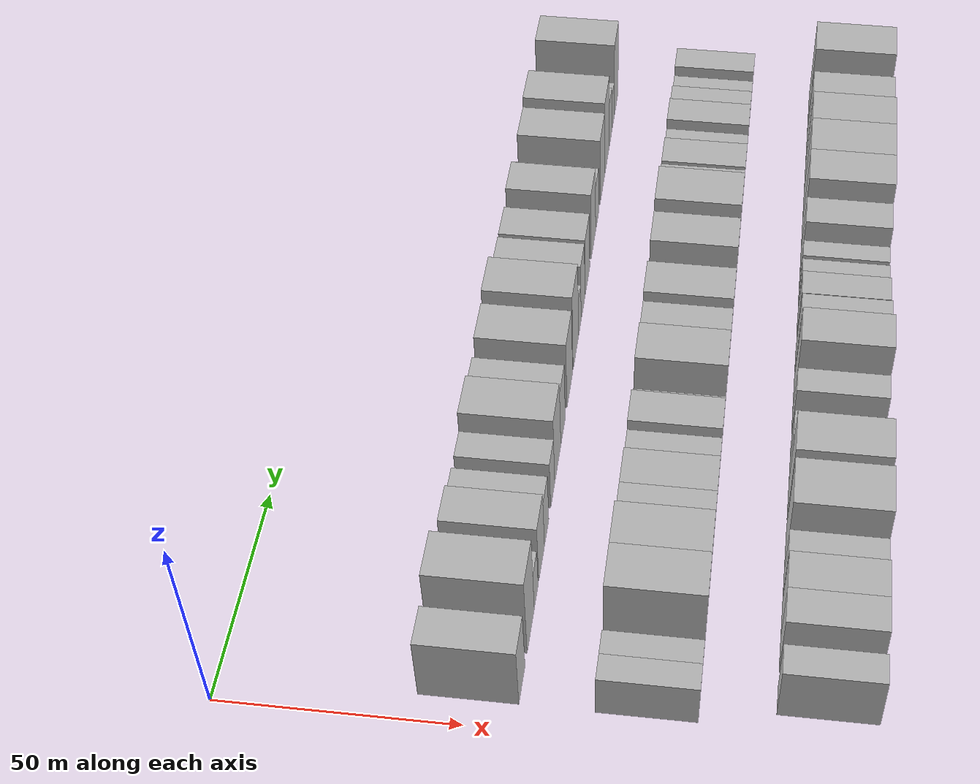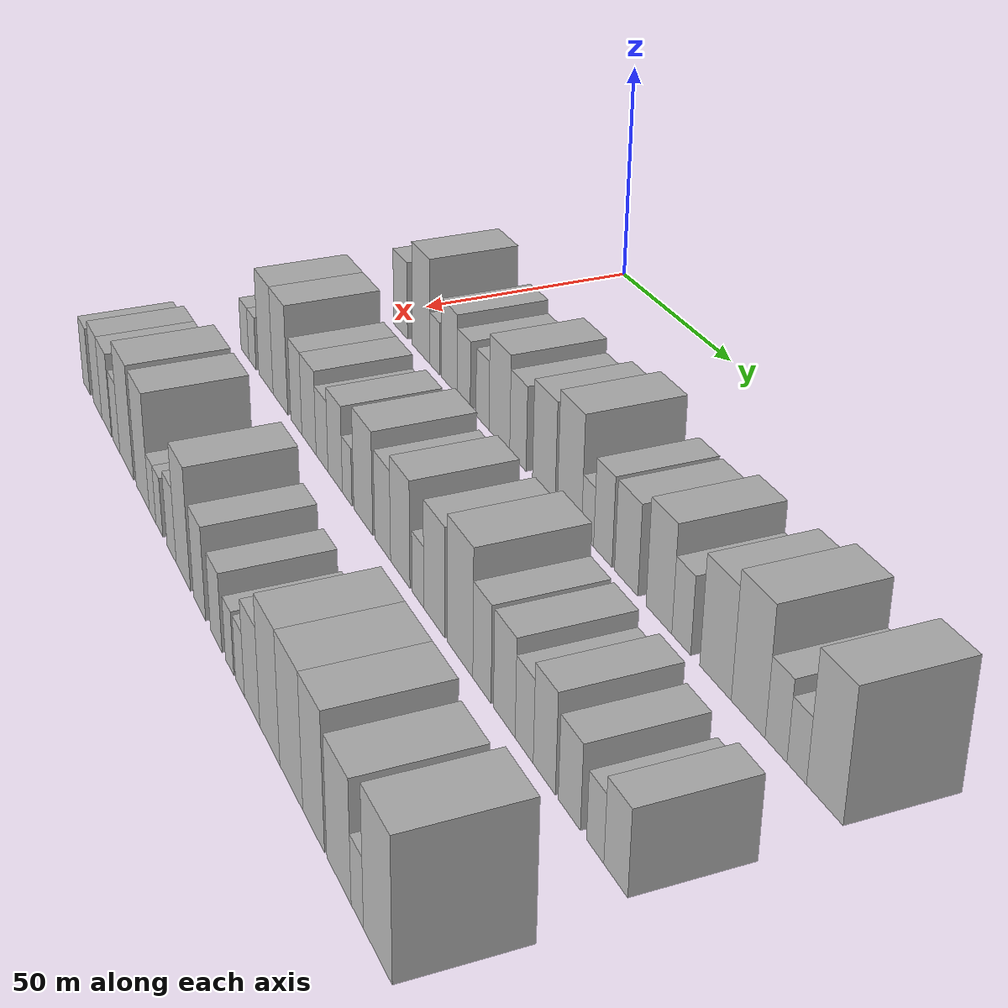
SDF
<sdf version="1.6">
 <world name="default">
  <model name="building_38">
   <static>1</static>
   <pose>50.0000 10.1009 0 0.000000 0.000000 0.000000</pose>
   <link name="link">
    <pose>0 0 9.00 0 0 0</pose>
    <collision name="collision"><geometry><box><size>20.0000 8.5998 18.0000</size></box></geometry></collision>
    <visual name="visual">
     <cast_shadows>0</cast_shadows>
     <geometry><box><size>20.0000 8.5998 18.0000</size></box></geometry>
     <material>
      <script>
       <uri>model://HANNAS_wall/materials/scripts</uri>
       <uri>model://HANNAS_wall/materials/textures</uri>
       <name>vrc/HANNAS_wall</name>
      </script>
     </material>
    </visual>
   </link>
  </model>
  <model name="building_39">
   <static>1</static>
   <pose>50.0000 22.5908 0 0.000000 0.000000 0.000000</pose>
   <link name="link">
    <pose>0 0 12.00 0 0 0</pose>
    <collision name="collision"><geometry><box><size>20.0000 10.3801 24.0000</size></box></geometry></collision>
    <visual name="visual">
     <cast_shadows>0</cast_shadows>
     <geometry><box><size>20.0000 10.3801 24.0000</size></box></geometry>
     <material>
      <script>
       <uri>model://HANNAS_wall/materials/scripts</uri>
       <uri>model://HANNAS_wall/materials/textures</uri>
       <name>vrc/HANNAS_wall</name>
      </script>
     </material>
    </visual>
   </link>
  </model>
  <model name="building_40">
   <static>1</static>
   <pose>50.0000 30.6912 0 0.000000 0.000000 0.000000</pose>
   <link name="link">
    <pose>0 0 6.00 0 0 0</pose>
    <collision name="collision"><geometry><box><size>20.0000 5.8206 12.0000</size></box></geometry></collision>
    <visual name="visual">
     <cast_shadows>0</cast_shadows>
     <geometry><box><size>20.0000 5.8206 12.0000</size></box></geometry>
     <material>
      <script>
       <uri>model://HANNAS_wall/materials/scripts</uri>
       <uri>model://HANNAS_wall/materials/textures</uri>
       <name>vrc/HANNAS_wall</name>
      </script>
     </material>
    </visual>
   </link>
  </model>
  <model name="building_41">
   <static>1</static>
   <pose>50.0000 39.0023 0 0.000000 0.000000 0.000000</pose>
   <link name="link">
    <pose>0 0 9.00 0 0 0</pose>
    <collision name="collision"><geometry><box><size>20.0000 8.8015 18.0000</size></box></geometry></collision>
    <visual name="visual">
     <cast_shadows>0</cast_shadows>
     <geometry><box><size>20.0000 8.8015 18.0000</size></box></geometry>
     <material>
      <script>
       <uri>model://HANNAS_wall/materials/scripts</uri>
       <uri>model://HANNAS_wall/materials/textures</uri>
       <name>vrc/HANNAS_wall</name>
      </script>
     </material>
    </visual>
   </link>
  </model>
  <model name="building_42">
   <static>1</static>
   <pose>50.0000 46.8425 0 0.000000 0.000000 0.000000</pose>
   <link name="link">
    <pose>0 0 7.50 0 0 0</pose>
    <collision name="collision"><geometry><box><size>20.0000 6.8788 15.0000</size></box></geometry></collision>
    <visual name="visual">
     <cast_shadows>0</cast_shadows>
     <geometry><box><size>20.0000 6.8788 15.0000</size></box></geometry>
     <material>
      <script>
       <uri>model://HANNAS_wall/materials/scripts</uri>
       <uri>model://HANNAS_wall/materials/textures</uri>
       <name>vrc/HANNAS_wall</name>
      </script>
     </material>
    </visual>
   </link>
  </model>
  <model name="building_43">
   <static>1</static>
   <pose>50.0000 56.6314 0 0.000000 0.000000 0.000000</pose>
   <link name="link">
    <pose>0 0 7.50 0 0 0</pose>
    <collision name="collision"><geometry><box><size>20.0000 6.6989 15.0000</size></box></geometry></collision>
    <visual name="visual">
     <cast_shadows>0</cast_shadows>
     <geometry><box><size>20.0000 6.6989 15.0000</size></box></geometry>
     <material>
      <script>
       <uri>model://HANNAS_wall/materials/scripts</uri>
       <uri>model://HANNAS_wall/materials/textures</uri>
       <name>vrc/HANNAS_wall</name>
      </script>
     </material>
    </visual>
   </link>
  </model>
  <model name="building_44">
   <static>1</static>
   <pose>50.0000 65.1340 0 0.000000 0.000000 0.000000</pose>
   <link name="link">
    <pose>0 0 10.50 0 0 0</pose>
    <collision name="collision"><geometry><box><size>20.0000 10.3063 21.0000</size></box></geometry></collision>
    <visual name="visual">
     <cast_shadows>0</cast_shadows>
     <geometry><box><size>20.0000 10.3063 21.0000</size></box></geometry>
     <material>
      <script>
       <uri>model://HANNAS_wall/materials/scripts</uri>
       <uri>model://HANNAS_wall/materials/textures</uri>
       <name>vrc/HANNAS_wall</name>
      </script>
     </material>
    </visual>
   </link>
  </model>
  <model name="building_45">
   <static>1</static>
   <pose>50.0000 74.1907 0 0.000000 0.000000 0.000000</pose>
   <link name="link">
    <pose>0 0 9.00 0 0 0</pose>
    <collision name="collision"><geometry><box><size>20.0000 7.8071 18.0000</size></box></geometry></collision>
    <visual name="visual">
     <cast_shadows>0</cast_shadows>
     <geometry><box><size>20.0000 7.8071 18.0000</size></box></geometry>
     <material>
      <script>
       <uri>model://HANNAS_wall/materials/scripts</uri>
       <uri>model://HANNAS_wall/materials/textures</uri>
       <name>vrc/HANNAS_wall</name>
      </script>
     </material>
    </visual>
   </link>
  </model>
  <model name="building_46">
   <static>1</static>
   <pose>50.0000 86.1909 0 0.000000 0.000000 0.000000</pose>
   <link name="link">
    <pose>0 0 10.50 0 0 0</pose>
    <collision name="collision"><geometry><box><size>20.0000 10.1934 21.0000</size></box></geometry></collision>
    <visual name="visual">
     <cast_shadows>0</cast_shadows>
     <geometry><box><size>20.0000 10.1934 21.0000</size></box></geometry>
     <material>
      <script>
       <uri>model://HANNAS_wall/materials/scripts</uri>
       <uri>model://HANNAS_wall/materials/textures</uri>
       <name>vrc/HANNAS_wall</name>
      </script>
     </material>
    </visual>
   </link>
  </model>
  <model name="building_47">
   <static>1</static>
   <pose>50.0000 97.4486 0 0.000000 0.000000 0.000000</pose>
   <link name="link">
    <pose>0 0 12.00 0 0 0</pose>
    <collision name="collision"><geometry><box><size>20.0000 10.3219 24.0000</size></box></geometry></collision>
    <visual name="visual">
     <cast_shadows>0</cast_shadows>
     <geometry><box><size>20.0000 10.3219 24.0000</size></box></geometry>
     <material>
      <script>
       <uri>model://HANNAS_wall/materials/scripts</uri>
       <uri>model://HANNAS_wall/materials/textures</uri>
       <name>vrc/HANNAS_wall</name>
      </script>
     </material>
    </visual>
   </link>
  </model>
  <model name="building_48">
   <static>1</static>
   <pose>50.0000 105.1076 0 0.000000 0.000000 0.000000</pose>
   <link name="link">
    <pose>0 0 6.00 0 0 0</pose>
    <collision name="collision"><geometry><box><size>20.0000 4.9961 12.0000</size></box></geometry></collision>
    <visual name="visual">
     <cast_shadows>0</cast_shadows>
     <geometry><box><size>20.0000 4.9961 12.0000</size></box></geometry>
     <material>
      <script>
       <uri>model://HANNAS_wall/materials/scripts</uri>
       <uri>model://HANNAS_wall/materials/textures</uri>
       <name>vrc/HANNAS_wall</name>
      </script>
     </material>
    </visual>
   </link>
  </model>
  <model name="building_49">
   <static>1</static>
   <pose>50.0000 111.2825 0 0.000000 0.000000 0.000000</pose>
   <link name="link">
    <pose>0 0 9.00 0 0 0</pose>
    <collision name="collision"><geometry><box><size>20.0000 7.3538 18.0000</size></box></geometry></collision>
    <visual name="visual">
     <cast_shadows>0</cast_shadows>
     <geometry><box><size>20.0000 7.3538 18.0000</size></box></geometry>
     <material>
      <script>
       <uri>model://HANNAS_wall/materials/scripts</uri>
       <uri>model://HANNAS_wall/materials/textures</uri>
       <name>vrc/HANNAS_wall</name>
      </script>
     </material>
    </visual>
   </link>
  </model>
  <model name="building_50">
   <static>1</static>
   <pose>50.0000 120.4251 0 0.000000 0.000000 0.000000</pose>
   <link name="link">
    <pose>0 0 9.00 0 0 0</pose>
    <collision name="collision"><geometry><box><size>20.0000 8.9313 18.0000</size></box></geometry></collision>
    <visual name="visual">
     <cast_shadows>0</cast_shadows>
     <geometry><box><size>20.0000 8.9313 18.0000</size></box></geometry>
     <material>
      <script>
       <uri>model://HANNAS_wall/materials/scripts</uri>
       <uri>model://HANNAS_wall/materials/textures</uri>
       <name>vrc/HANNAS_wall</name>
      </script>
     </material>
    </visual>
   </link>
  </model>
  <model name="building_51">
   <static>1</static>
   <pose>50.0000 132.5231 0 0.000000 0.000000 0.000000</pose>
   <link name="link">
    <pose>0 0 10.50 0 0 0</pose>
    <collision name="collision"><geometry><box><size>20.0000 9.2649 21.0000</size></box></geometry></collision>
    <visual name="visual">
     <cast_shadows>0</cast_shadows>
     <geometry><box><size>20.0000 9.2649 21.0000</size></box></geometry>
     <material>
      <script>
       <uri>model://HANNAS_wall/materials/scripts</uri>
       <uri>model://HANNAS_wall/materials/textures</uri>
       <name>vrc/HANNAS_wall</name>
      </script>
     </material>
    </visual>
   </link>
  </model>
  <model name="building_52">
   <static>1</static>
   <pose>50.0000 140.4135 0 0.000000 0.000000 0.000000</pose>
   <link name="link">
    <pose>0 0 7.50 0 0 0</pose>
    <collision name="collision"><geometry><box><size>20.0000 6.5158 15.0000</size></box></geometry></collision>
    <visual name="visual">
     <cast_shadows>0</cast_shadows>
     <geometry><box><size>20.0000 6.5158 15.0000</size></box></geometry>
     <material>
      <script>
       <uri>model://HANNAS_wall/materials/scripts</uri>
       <uri>model://HANNAS_wall/materials/textures</uri>
       <name>vrc/HANNAS_wall</name>
      </script>
     </material>
    </visual>
   </link>
  </model>
  <model name="building_53">
   <static>1</static>
   <pose>50.0000 151.7754 0 0.000000 0.000000 0.000000</pose>
   <link name="link">
    <pose>0 0 10.50 0 0 0</pose>
    <collision name="collision"><geometry><box><size>20.0000 10.2081 21.0000</size></box></geometry></collision>
    <visual name="visual">
     <cast_shadows>0</cast_shadows>
     <geometry><box><size>20.0000 10.2081 21.0000</size></box></geometry>
     <material>
      <script>
       <uri>model://HANNAS_wall/materials/scripts</uri>
       <uri>model://HANNAS_wall/materials/textures</uri>
       <name>vrc/HANNAS_wall</name>
      </script>
     </material>
    </visual>
   </link>
  </model>
  <model name="building_54">
   <static>1</static>
   <pose>50.0000 162.0459 0 0.000000 0.000000 0.000000</pose>
   <link name="link">
    <pose>0 0 12.00 0 0 0</pose>
    <collision name="collision"><geometry><box><size>20.0000 10.3329 24.0000</size></box></geometry></collision>
    <visual name="visual">
     <cast_shadows>0</cast_shadows>
     <geometry><box><size>20.0000 10.3329 24.0000</size></box></geometry>
     <material>
      <script>
       <uri>model://HANNAS_wall/materials/scripts</uri>
       <uri>model://HANNAS_wall/materials/textures</uri>
       <name>vrc/HANNAS_wall</name>
      </script>
     </material>
    </visual>
   </link>
  </model>
  <model name="building_55">
   <static>1</static>
   <pose>50.0000 170.3874 0 0.000000 0.000000 0.000000</pose>
   <link name="link">
    <pose>0 0 7.50 0 0 0</pose>
    <collision name="collision"><geometry><box><size>20.0000 6.3500 15.0000</size></box></geometry></collision>
    <visual name="visual">
     <cast_shadows>0</cast_shadows>
     <geometry><box><size>20.0000 6.3500 15.0000</size></box></geometry>
     <material>
      <script>
       <uri>model://HANNAS_wall/materials/scripts</uri>
       <uri>model://HANNAS_wall/materials/textures</uri>
       <name>vrc/HANNAS_wall</name>
      </script>
     </material>
    </visual>
   </link>
  </model>
  <model name="building_56">
   <static>1</static>
   <pose>50.0000 176.3052 0 0.000000 0.000000 0.000000</pose>
   <link name="link">
    <pose>0 0 6.00 0 0 0</pose>
    <collision name="collision"><geometry><box><size>20.0000 5.4856 12.0000</size></box></geometry></collision>
    <visual name="visual">
     <cast_shadows>0</cast_shadows>
     <geometry><box><size>20.0000 5.4856 12.0000</size></box></geometry>
     <material>
      <script>
       <uri>model://HANNAS_wall/materials/scripts</uri>
       <uri>model://HANNAS_wall/materials/textures</uri>
       <name>vrc/HANNAS_wall</name>
      </script>
     </material>
    </visual>
   </link>
  </model>
  <model name="building_57">
   <static>1</static>
   <pose>50.0000 183.9817 0 0.000000 0.000000 0.000000</pose>
   <link name="link">
    <pose>0 0 12.00 0 0 0</pose>
    <collision name="collision"><geometry><box><size>20.0000 9.8675 24.0000</size></box></geometry></collision>
    <visual name="visual">
     <cast_shadows>0</cast_shadows>
     <geometry><box><size>20.0000 9.8675 24.0000</size></box></geometry>
     <material>
      <script>
       <uri>model://HANNAS_wall/materials/scripts</uri>
       <uri>model://HANNAS_wall/materials/textures</uri>
       <name>vrc/HANNAS_wall</name>
      </script>
     </material>
    </visual>
   </link>
  </model>
  <model name="building_124">
   <static>1</static>
   <pose>85.0000 8.6486 0 0.000000 0.000000 0.000000</pose>
   <link name="link">
    <pose>0 0 6.00 0 0 0</pose>
    <collision name="collision"><geometry><box><size>20.0000 5.8241 12.0000</size></box></geometry></collision>
    <visual name="visual">
     <cast_shadows>0</cast_shadows>
     <geometry><box><size>20.0000 5.8241 12.0000</size></box></geometry>
     <material>
      <script>
       <uri>model://HANNAS_wall/materials/scripts</uri>
       <uri>model://HANNAS_wall/materials/textures</uri>
       <name>vrc/HANNAS_wall</name>
      </script>
     </material>
    </visual>
   </link>
  </model>
  <model name="building_125">
   <static>1</static>
   <pose>85.0000 14.2326 0 0.000000 0.000000 0.000000</pose>
   <link name="link">
    <pose>0 0 6.00 0 0 0</pose>
    <collision name="collision"><geometry><box><size>20.0000 5.3440 12.0000</size></box></geometry></collision>
    <visual name="visual">
     <cast_shadows>0</cast_shadows>
     <geometry><box><size>20.0000 5.3440 12.0000</size></box></geometry>
     <material>
      <script>
       <uri>model://HANNAS_wall/materials/scripts</uri>
       <uri>model://HANNAS_wall/materials/textures</uri>
       <name>vrc/HANNAS_wall</name>
      </script>
     </material>
    </visual>
   </link>
  </model>
  <model name="building_126">
   <static>1</static>
   <pose>85.0000 24.0007 0 0.000000 0.000000 0.000000</pose>
   <link name="link">
    <pose>0 0 12.00 0 0 0</pose>
    <collision name="collision"><geometry><box><size>20.0000 10.1921 24.0000</size></box></geometry></collision>
    <visual name="visual">
     <cast_shadows>0</cast_shadows>
     <geometry><box><size>20.0000 10.1921 24.0000</size></box></geometry>
     <material>
      <script>
       <uri>model://HANNAS_wall/materials/scripts</uri>
       <uri>model://HANNAS_wall/materials/textures</uri>
       <name>vrc/HANNAS_wall</name>
      </script>
     </material>
    </visual>
   </link>
  </model>
  <model name="building_127">
   <static>1</static>
   <pose>85.0000 34.1132 0 0.000000 0.000000 0.000000</pose>
   <link name="link">
    <pose>0 0 12.00 0 0 0</pose>
    <collision name="collision"><geometry><box><size>20.0000 10.0329 24.0000</size></box></geometry></collision>
    <visual name="visual">
     <cast_shadows>0</cast_shadows>
     <geometry><box><size>20.0000 10.0329 24.0000</size></box></geometry>
     <material>
      <script>
       <uri>model://HANNAS_wall/materials/scripts</uri>
       <uri>model://HANNAS_wall/materials/textures</uri>
       <name>vrc/HANNAS_wall</name>
      </script>
     </material>
    </visual>
   </link>
  </model>
  <model name="building_128">
   <static>1</static>
   <pose>85.0000 44.7408 0 0.000000 0.000000 0.000000</pose>
   <link name="link">
    <pose>0 0 9.00 0 0 0</pose>
    <collision name="collision"><geometry><box><size>20.0000 7.2222 18.0000</size></box></geometry></collision>
    <visual name="visual">
     <cast_shadows>0</cast_shadows>
     <geometry><box><size>20.0000 7.2222 18.0000</size></box></geometry>
     <material>
      <script>
       <uri>model://HANNAS_wall/materials/scripts</uri>
       <uri>model://HANNAS_wall/materials/textures</uri>
       <name>vrc/HANNAS_wall</name>
      </script>
     </material>
    </visual>
   </link>
  </model>
  <model name="building_129">
   <static>1</static>
   <pose>85.0000 52.8256 0 0.000000 0.000000 0.000000</pose>
   <link name="link">
    <pose>0 0 9.00 0 0 0</pose>
    <collision name="collision"><geometry><box><size>20.0000 8.9473 18.0000</size></box></geometry></collision>
    <visual name="visual">
     <cast_shadows>0</cast_shadows>
     <geometry><box><size>20.0000 8.9473 18.0000</size></box></geometry>
     <material>
      <script>
       <uri>model://HANNAS_wall/materials/scripts</uri>
       <uri>model://HANNAS_wall/materials/textures</uri>
       <name>vrc/HANNAS_wall</name>
      </script>
     </material>
    </visual>
   </link>
  </model>
  <model name="building_130">
   <static>1</static>
   <pose>85.0000 60.8961 0 0.000000 0.000000 0.000000</pose>
   <link name="link">
    <pose>0 0 7.50 0 0 0</pose>
    <collision name="collision"><geometry><box><size>20.0000 7.1937 15.0000</size></box></geometry></collision>
    <visual name="visual">
     <cast_shadows>0</cast_shadows>
     <geometry><box><size>20.0000 7.1937 15.0000</size></box></geometry>
     <material>
      <script>
       <uri>model://HANNAS_wall/materials/scripts</uri>
       <uri>model://HANNAS_wall/materials/textures</uri>
       <name>vrc/HANNAS_wall</name>
      </script>
     </material>
    </visual>
   </link>
  </model>
  <model name="building_131">
   <static>1</static>
   <pose>85.0000 68.7031 0 0.000000 0.000000 0.000000</pose>
   <link name="link">
    <pose>0 0 9.00 0 0 0</pose>
    <collision name="collision"><geometry><box><size>20.0000 8.4203 18.0000</size></box></geometry></collision>
    <visual name="visual">
     <cast_shadows>0</cast_shadows>
     <geometry><box><size>20.0000 8.4203 18.0000</size></box></geometry>
     <material>
      <script>
       <uri>model://HANNAS_wall/materials/scripts</uri>
       <uri>model://HANNAS_wall/materials/textures</uri>
       <name>vrc/HANNAS_wall</name>
      </script>
     </material>
    </visual>
   </link>
  </model>
  <model name="building_132">
   <static>1</static>
   <pose>85.0000 75.6144 0 0.000000 0.000000 0.000000</pose>
   <link name="link">
    <pose>0 0 6.00 0 0 0</pose>
    <collision name="collision"><geometry><box><size>20.0000 5.4023 12.0000</size></box></geometry></collision>
    <visual name="visual">
     <cast_shadows>0</cast_shadows>
     <geometry><box><size>20.0000 5.4023 12.0000</size></box></geometry>
     <material>
      <script>
       <uri>model://HANNAS_wall/materials/scripts</uri>
       <uri>model://HANNAS_wall/materials/textures</uri>
       <name>vrc/HANNAS_wall</name>
      </script>
     </material>
    </visual>
   </link>
  </model>
  <model name="building_133">
   <static>1</static>
   <pose>85.0000 84.4628 0 0.000000 0.000000 0.000000</pose>
   <link name="link">
    <pose>0 0 10.50 0 0 0</pose>
    <collision name="collision"><geometry><box><size>20.0000 10.2947 21.0000</size></box></geometry></collision>
    <visual name="visual">
     <cast_shadows>0</cast_shadows>
     <geometry><box><size>20.0000 10.2947 21.0000</size></box></geometry>
     <material>
      <script>
       <uri>model://HANNAS_wall/materials/scripts</uri>
       <uri>model://HANNAS_wall/materials/textures</uri>
       <name>vrc/HANNAS_wall</name>
      </script>
     </material>
    </visual>
   </link>
  </model>
  <model name="building_134">
   <static>1</static>
   <pose>85.0000 94.7069 0 0.000000 0.000000 0.000000</pose>
   <link name="link">
    <pose>0 0 9.00 0 0 0</pose>
    <collision name="collision"><geometry><box><size>20.0000 8.1934 18.0000</size></box></geometry></collision>
    <visual name="visual">
     <cast_shadows>0</cast_shadows>
     <geometry><box><size>20.0000 8.1934 18.0000</size></box></geometry>
     <material>
      <script>
       <uri>model://HANNAS_wall/materials/scripts</uri>
       <uri>model://HANNAS_wall/materials/textures</uri>
       <name>vrc/HANNAS_wall</name>
      </script>
     </material>
    </visual>
   </link>
  </model>
  <model name="building_135">
   <static>1</static>
   <pose>85.0000 103.5654 0 0.000000 0.000000 0.000000</pose>
   <link name="link">
    <pose>0 0 10.50 0 0 0</pose>
    <collision name="collision"><geometry><box><size>20.0000 9.5238 21.0000</size></box></geometry></collision>
    <visual name="visual">
     <cast_shadows>0</cast_shadows>
     <geometry><box><size>20.0000 9.5238 21.0000</size></box></geometry>
     <material>
      <script>
       <uri>model://HANNAS_wall/materials/scripts</uri>
       <uri>model://HANNAS_wall/materials/textures</uri>
       <name>vrc/HANNAS_wall</name>
      </script>
     </material>
    </visual>
   </link>
  </model>
  <model name="building_136">
   <static>1</static>
   <pose>85.0000 112.0860 0 0.000000 0.000000 0.000000</pose>
   <link name="link">
    <pose>0 0 6.00 0 0 0</pose>
    <collision name="collision"><geometry><box><size>20.0000 5.5174 12.0000</size></box></geometry></collision>
    <visual name="visual">
     <cast_shadows>0</cast_shadows>
     <geometry><box><size>20.0000 5.5174 12.0000</size></box></geometry>
     <material>
      <script>
       <uri>model://HANNAS_wall/materials/scripts</uri>
       <uri>model://HANNAS_wall/materials/textures</uri>
       <name>vrc/HANNAS_wall</name>
      </script>
     </material>
    </visual>
   </link>
  </model>
  <model name="building_137">
   <static>1</static>
   <pose>85.0000 119.6228 0 0.000000 0.000000 0.000000</pose>
   <link name="link">
    <pose>0 0 10.50 0 0 0</pose>
    <collision name="collision"><geometry><box><size>20.0000 9.5562 21.0000</size></box></geometry></collision>
    <visual name="visual">
     <cast_shadows>0</cast_shadows>
     <geometry><box><size>20.0000 9.5562 21.0000</size></box></geometry>
     <material>
      <script>
       <uri>model://HANNAS_wall/materials/scripts</uri>
       <uri>model://HANNAS_wall/materials/textures</uri>
       <name>vrc/HANNAS_wall</name>
      </script>
     </material>
    </visual>
   </link>
  </model>
  <model name="building_138">
   <static>1</static>
   <pose>85.0000 130.8989 0 0.000000 0.000000 0.000000</pose>
   <link name="link">
    <pose>0 0 12.00 0 0 0</pose>
    <collision name="collision"><geometry><box><size>20.0000 10.9958 24.0000</size></box></geometry></collision>
    <visual name="visual">
     <cast_shadows>0</cast_shadows>
     <geometry><box><size>20.0000 10.9958 24.0000</size></box></geometry>
     <material>
      <script>
       <uri>model://HANNAS_wall/materials/scripts</uri>
       <uri>model://HANNAS_wall/materials/textures</uri>
       <name>vrc/HANNAS_wall</name>
      </script>
     </material>
    </visual>
   </link>
  </model>
  <model name="building_139">
   <static>1</static>
   <pose>85.0000 140.0787 0 0.000000 0.000000 0.000000</pose>
   <link name="link">
    <pose>0 0 9.00 0 0 0</pose>
    <collision name="collision"><geometry><box><size>20.0000 7.3638 18.0000</size></box></geometry></collision>
    <visual name="visual">
     <cast_shadows>0</cast_shadows>
     <geometry><box><size>20.0000 7.3638 18.0000</size></box></geometry>
     <material>
      <script>
       <uri>model://HANNAS_wall/materials/scripts</uri>
       <uri>model://HANNAS_wall/materials/textures</uri>
       <name>vrc/HANNAS_wall</name>
      </script>
     </material>
    </visual>
   </link>
  </model>
  <model name="building_140">
   <static>1</static>
   <pose>85.0000 148.9376 0 0.000000 0.000000 0.000000</pose>
   <link name="link">
    <pose>0 0 9.00 0 0 0</pose>
    <collision name="collision"><geometry><box><size>20.0000 8.3540 18.0000</size></box></geometry></collision>
    <visual name="visual">
     <cast_shadows>0</cast_shadows>
     <geometry><box><size>20.0000 8.3540 18.0000</size></box></geometry>
     <material>
      <script>
       <uri>model://HANNAS_wall/materials/scripts</uri>
       <uri>model://HANNAS_wall/materials/textures</uri>
       <name>vrc/HANNAS_wall</name>
      </script>
     </material>
    </visual>
   </link>
  </model>
  <model name="building_141">
   <static>1</static>
   <pose>85.0000 156.4639 0 0.000000 0.000000 0.000000</pose>
   <link name="link">
    <pose>0 0 7.50 0 0 0</pose>
    <collision name="collision"><geometry><box><size>20.0000 6.6986 15.0000</size></box></geometry></collision>
    <visual name="visual">
     <cast_shadows>0</cast_shadows>
     <geometry><box><size>20.0000 6.6986 15.0000</size></box></geometry>
     <material>
      <script>
       <uri>model://HANNAS_wall/materials/scripts</uri>
       <uri>model://HANNAS_wall/materials/textures</uri>
       <name>vrc/HANNAS_wall</name>
      </script>
     </material>
    </visual>
   </link>
  </model>
  <model name="building_142">
   <static>1</static>
   <pose>85.0000 163.7423 0 0.000000 0.000000 0.000000</pose>
   <link name="link">
    <pose>0 0 9.00 0 0 0</pose>
    <collision name="collision"><geometry><box><size>20.0000 7.8582 18.0000</size></box></geometry></collision>
    <visual name="visual">
     <cast_shadows>0</cast_shadows>
     <geometry><box><size>20.0000 7.8582 18.0000</size></box></geometry>
     <material>
      <script>
       <uri>model://HANNAS_wall/materials/scripts</uri>
       <uri>model://HANNAS_wall/materials/textures</uri>
       <name>vrc/HANNAS_wall</name>
      </script>
     </material>
    </visual>
   </link>
  </model>
  <model name="building_143">
   <static>1</static>
   <pose>85.0000 172.3974 0 0.000000 0.000000 0.000000</pose>
   <link name="link">
    <pose>0 0 7.50 0 0 0</pose>
    <collision name="collision"><geometry><box><size>20.0000 7.4520 15.0000</size></box></geometry></collision>
    <visual name="visual">
     <cast_shadows>0</cast_shadows>
     <geometry><box><size>20.0000 7.4520 15.0000</size></box></geometry>
     <material>
      <script>
       <uri>model://HANNAS_wall/materials/scripts</uri>
       <uri>model://HANNAS_wall/materials/textures</uri>
       <name>vrc/HANNAS_wall</name>
      </script>
     </material>
    </visual>
   </link>
  </model>
  <model name="building_144">
   <static>1</static>
   <pose>85.0000 180.8884 0 0.000000 0.000000 0.000000</pose>
   <link name="link">
    <pose>0 0 6.00 0 0 0</pose>
    <collision name="collision"><geometry><box><size>20.0000 5.5300 12.0000</size></box></geometry></collision>
    <visual name="visual">
     <cast_shadows>0</cast_shadows>
     <geometry><box><size>20.0000 5.5300 12.0000</size></box></geometry>
     <material>
      <script>
       <uri>model://HANNAS_wall/materials/scripts</uri>
       <uri>model://HANNAS_wall/materials/textures</uri>
       <name>vrc/HANNAS_wall</name>
      </script>
     </material>
    </visual>
   </link>
  </model>
  <model name="building_145">
   <static>1</static>
   <pose>85.0000 187.3260 0 0.000000 0.000000 0.000000</pose>
   <link name="link">
    <pose>0 0 7.50 0 0 0</pose>
    <collision name="collision"><geometry><box><size>20.0000 7.3452 15.0000</size></box></geometry></collision>
    <visual name="visual">
     <cast_shadows>0</cast_shadows>
     <geometry><box><size>20.0000 7.3452 15.0000</size></box></geometry>
     <material>
      <script>
       <uri>model://HANNAS_wall/materials/scripts</uri>
       <uri>model://HANNAS_wall/materials/textures</uri>
       <name>vrc/HANNAS_wall</name>
      </script>
     </material>
    </visual>
   </link>
  </model>
  <model name="building_208">
   <static>1</static>
   <pose>120.0000 12.4734 0 0.000000 0.000000 0.000000</pose>
   <link name="link">
    <pose>0 0 7.50 0 0 0</pose>
    <collision name="collision"><geometry><box><size>20.0000 6.5864 15.0000</size></box></geometry></collision>
    <visual name="visual">
     <cast_shadows>0</cast_shadows>
     <geometry><box><size>20.0000 6.5864 15.0000</size></box></geometry>
     <material>
      <script>
       <uri>model://HANNAS_wall/materials/scripts</uri>
       <uri>model://HANNAS_wall/materials/textures</uri>
       <name>vrc/HANNAS_wall</name>
      </script>
     </material>
    </visual>
   </link>
  </model>
  <model name="building_209">
   <static>1</static>
   <pose>120.0000 22.7579 0 0.000000 0.000000 0.000000</pose>
   <link name="link">
    <pose>0 0 9.00 0 0 0</pose>
    <collision name="collision"><geometry><box><size>20.0000 7.9825 18.0000</size></box></geometry></collision>
    <visual name="visual">
     <cast_shadows>0</cast_shadows>
     <geometry><box><size>20.0000 7.9825 18.0000</size></box></geometry>
     <material>
      <script>
       <uri>model://HANNAS_wall/materials/scripts</uri>
       <uri>model://HANNAS_wall/materials/textures</uri>
       <name>vrc/HANNAS_wall</name>
      </script>
     </material>
    </visual>
   </link>
  </model>
  <model name="building_210">
   <static>1</static>
   <pose>120.0000 31.0517 0 0.000000 0.000000 0.000000</pose>
   <link name="link">
    <pose>0 0 9.00 0 0 0</pose>
    <collision name="collision"><geometry><box><size>20.0000 8.6052 18.0000</size></box></geometry></collision>
    <visual name="visual">
     <cast_shadows>0</cast_shadows>
     <geometry><box><size>20.0000 8.6052 18.0000</size></box></geometry>
     <material>
      <script>
       <uri>model://HANNAS_wall/materials/scripts</uri>
       <uri>model://HANNAS_wall/materials/textures</uri>
       <name>vrc/HANNAS_wall</name>
      </script>
     </material>
    </visual>
   </link>
  </model>
  <model name="building_211">
   <static>1</static>
   <pose>120.0000 39.4945 0 0.000000 0.000000 0.000000</pose>
   <link name="link">
    <pose>0 0 7.50 0 0 0</pose>
    <collision name="collision"><geometry><box><size>20.0000 6.2804 15.0000</size></box></geometry></collision>
    <visual name="visual">
     <cast_shadows>0</cast_shadows>
     <geometry><box><size>20.0000 6.2804 15.0000</size></box></geometry>
     <material>
      <script>
       <uri>model://HANNAS_wall/materials/scripts</uri>
       <uri>model://HANNAS_wall/materials/textures</uri>
       <name>vrc/HANNAS_wall</name>
      </script>
     </material>
    </visual>
   </link>
  </model>
  <model name="building_212">
   <static>1</static>
   <pose>120.0000 48.3096 0 0.000000 0.000000 0.000000</pose>
   <link name="link">
    <pose>0 0 12.00 0 0 0</pose>
    <collision name="collision"><geometry><box><size>20.0000 11.3497 24.0000</size></box></geometry></collision>
    <visual name="visual">
     <cast_shadows>0</cast_shadows>
     <geometry><box><size>20.0000 11.3497 24.0000</size></box></geometry>
     <material>
      <script>
       <uri>model://HANNAS_wall/materials/scripts</uri>
       <uri>model://HANNAS_wall/materials/textures</uri>
       <name>vrc/HANNAS_wall</name>
      </script>
     </material>
    </visual>
   </link>
  </model>
  <model name="building_213">
   <static>1</static>
   <pose>120.0000 61.1034 0 0.000000 0.000000 0.000000</pose>
   <link name="link">
    <pose>0 0 12.00 0 0 0</pose>
    <collision name="collision"><geometry><box><size>20.0000 10.2379 24.0000</size></box></geometry></collision>
    <visual name="visual">
     <cast_shadows>0</cast_shadows>
     <geometry><box><size>20.0000 10.2379 24.0000</size></box></geometry>
     <material>
      <script>
       <uri>model://HANNAS_wall/materials/scripts</uri>
       <uri>model://HANNAS_wall/materials/textures</uri>
       <name>vrc/HANNAS_wall</name>
      </script>
     </material>
    </visual>
   </link>
  </model>
  <model name="building_214">
   <static>1</static>
   <pose>120.0000 68.7148 0 0.000000 0.000000 0.000000</pose>
   <link name="link">
    <pose>0 0 6.00 0 0 0</pose>
    <collision name="collision"><geometry><box><size>20.0000 4.9849 12.0000</size></box></geometry></collision>
    <visual name="visual">
     <cast_shadows>0</cast_shadows>
     <geometry><box><size>20.0000 4.9849 12.0000</size></box></geometry>
     <material>
      <script>
       <uri>model://HANNAS_wall/materials/scripts</uri>
       <uri>model://HANNAS_wall/materials/textures</uri>
       <name>vrc/HANNAS_wall</name>
      </script>
     </material>
    </visual>
   </link>
  </model>
  <model name="building_215">
   <static>1</static>
   <pose>120.0000 73.7240 0 0.000000 0.000000 0.000000</pose>
   <link name="link">
    <pose>0 0 6.00 0 0 0</pose>
    <collision name="collision"><geometry><box><size>20.0000 5.0336 12.0000</size></box></geometry></collision>
    <visual name="visual">
     <cast_shadows>0</cast_shadows>
     <geometry><box><size>20.0000 5.0336 12.0000</size></box></geometry>
     <material>
      <script>
       <uri>model://HANNAS_wall/materials/scripts</uri>
       <uri>model://HANNAS_wall/materials/textures</uri>
       <name>vrc/HANNAS_wall</name>
      </script>
     </material>
    </visual>
   </link>
  </model>
  <model name="building_216">
   <static>1</static>
   <pose>120.0000 82.4980 0 0.000000 0.000000 0.000000</pose>
   <link name="link">
    <pose>0 0 7.50 0 0 0</pose>
    <collision name="collision"><geometry><box><size>20.0000 6.5144 15.0000</size></box></geometry></collision>
    <visual name="visual">
     <cast_shadows>0</cast_shadows>
     <geometry><box><size>20.0000 6.5144 15.0000</size></box></geometry>
     <material>
      <script>
       <uri>model://HANNAS_wall/materials/scripts</uri>
       <uri>model://HANNAS_wall/materials/textures</uri>
       <name>vrc/HANNAS_wall</name>
      </script>
     </material>
    </visual>
   </link>
  </model>
  <model name="building_217">
   <static>1</static>
   <pose>120.0000 90.5579 0 0.000000 0.000000 0.000000</pose>
   <link name="link">
    <pose>0 0 12.00 0 0 0</pose>
    <collision name="collision"><geometry><box><size>20.0000 9.6054 24.0000</size></box></geometry></collision>
    <visual name="visual">
     <cast_shadows>0</cast_shadows>
     <geometry><box><size>20.0000 9.6054 24.0000</size></box></geometry>
     <material>
      <script>
       <uri>model://HANNAS_wall/materials/scripts</uri>
       <uri>model://HANNAS_wall/materials/textures</uri>
       <name>vrc/HANNAS_wall</name>
      </script>
     </material>
    </visual>
   </link>
  </model>
  <model name="building_218">
   <static>1</static>
   <pose>120.0000 101.2158 0 0.000000 0.000000 0.000000</pose>
   <link name="link">
    <pose>0 0 9.00 0 0 0</pose>
    <collision name="collision"><geometry><box><size>20.0000 7.7105 18.0000</size></box></geometry></collision>
    <visual name="visual">
     <cast_shadows>0</cast_shadows>
     <geometry><box><size>20.0000 7.7105 18.0000</size></box></geometry>
     <material>
      <script>
       <uri>model://HANNAS_wall/materials/scripts</uri>
       <uri>model://HANNAS_wall/materials/textures</uri>
       <name>vrc/HANNAS_wall</name>
      </script>
     </material>
    </visual>
   </link>
  </model>
  <model name="building_219">
   <static>1</static>
   <pose>120.0000 111.5632 0 0.000000 0.000000 0.000000</pose>
   <link name="link">
    <pose>0 0 7.50 0 0 0</pose>
    <collision name="collision"><geometry><box><size>20.0000 6.9842 15.0000</size></box></geometry></collision>
    <visual name="visual">
     <cast_shadows>0</cast_shadows>
     <geometry><box><size>20.0000 6.9842 15.0000</size></box></geometry>
     <material>
      <script>
       <uri>model://HANNAS_wall/materials/scripts</uri>
       <uri>model://HANNAS_wall/materials/textures</uri>
       <name>vrc/HANNAS_wall</name>
      </script>
     </material>
    </visual>
   </link>
  </model>
  <model name="building_220">
   <static>1</static>
   <pose>120.0000 119.4752 0 0.000000 0.000000 0.000000</pose>
   <link name="link">
    <pose>0 0 6.00 0 0 0</pose>
    <collision name="collision"><geometry><box><size>20.0000 4.8398 12.0000</size></box></geometry></collision>
    <visual name="visual">
     <cast_shadows>0</cast_shadows>
     <geometry><box><size>20.0000 4.8398 12.0000</size></box></geometry>
     <material>
      <script>
       <uri>model://HANNAS_wall/materials/scripts</uri>
       <uri>model://HANNAS_wall/materials/textures</uri>
       <name>vrc/HANNAS_wall</name>
      </script>
     </material>
    </visual>
   </link>
  </model>
  <model name="building_221">
   <static>1</static>
   <pose>120.0000 125.4026 0 0.000000 0.000000 0.000000</pose>
   <link name="link">
    <pose>0 0 6.00 0 0 0</pose>
    <collision name="collision"><geometry><box><size>20.0000 5.0149 12.0000</size></box></geometry></collision>
    <visual name="visual">
     <cast_shadows>0</cast_shadows>
     <geometry><box><size>20.0000 5.0149 12.0000</size></box></geometry>
     <material>
      <script>
       <uri>model://HANNAS_wall/materials/scripts</uri>
       <uri>model://HANNAS_wall/materials/textures</uri>
       <name>vrc/HANNAS_wall</name>
      </script>
     </material>
    </visual>
   </link>
  </model>
  <model name="building_222">
   <static>1</static>
   <pose>120.0000 132.0659 0 0.000000 0.000000 0.000000</pose>
   <link name="link">
    <pose>0 0 9.00 0 0 0</pose>
    <collision name="collision"><geometry><box><size>20.0000 8.3119 18.0000</size></box></geometry></collision>
    <visual name="visual">
     <cast_shadows>0</cast_shadows>
     <geometry><box><size>20.0000 8.3119 18.0000</size></box></geometry>
     <material>
      <script>
       <uri>model://HANNAS_wall/materials/scripts</uri>
       <uri>model://HANNAS_wall/materials/textures</uri>
       <name>vrc/HANNAS_wall</name>
      </script>
     </material>
    </visual>
   </link>
  </model>
  <model name="building_223">
   <static>1</static>
   <pose>120.0000 141.3389 0 0.000000 0.000000 0.000000</pose>
   <link name="link">
    <pose>0 0 12.00 0 0 0</pose>
    <collision name="collision"><geometry><box><size>20.0000 10.2341 24.0000</size></box></geometry></collision>
    <visual name="visual">
     <cast_shadows>0</cast_shadows>
     <geometry><box><size>20.0000 10.2341 24.0000</size></box></geometry>
     <material>
      <script>
       <uri>model://HANNAS_wall/materials/scripts</uri>
       <uri>model://HANNAS_wall/materials/textures</uri>
       <name>vrc/HANNAS_wall</name>
      </script>
     </material>
    </visual>
   </link>
  </model>
  <model name="building_224">
   <static>1</static>
   <pose>120.0000 151.9719 0 0.000000 0.000000 0.000000</pose>
   <link name="link">
    <pose>0 0 12.00 0 0 0</pose>
    <collision name="collision"><geometry><box><size>20.0000 11.0319 24.0000</size></box></geometry></collision>
    <visual name="visual">
     <cast_shadows>0</cast_shadows>
     <geometry><box><size>20.0000 11.0319 24.0000</size></box></geometry>
     <material>
      <script>
       <uri>model://HANNAS_wall/materials/scripts</uri>
       <uri>model://HANNAS_wall/materials/textures</uri>
       <name>vrc/HANNAS_wall</name>
      </script>
     </material>
    </visual>
   </link>
  </model>
  <model name="building_225">
   <static>1</static>
   <pose>120.0000 162.3767 0 0.000000 0.000000 0.000000</pose>
   <link name="link">
    <pose>0 0 12.00 0 0 0</pose>
    <collision name="collision"><geometry><box><size>20.0000 9.7776 24.0000</size></box></geometry></collision>
    <visual name="visual">
     <cast_shadows>0</cast_shadows>
     <geometry><box><size>20.0000 9.7776 24.0000</size></box></geometry>
     <material>
      <script>
       <uri>model://HANNAS_wall/materials/scripts</uri>
       <uri>model://HANNAS_wall/materials/textures</uri>
       <name>vrc/HANNAS_wall</name>
      </script>
     </material>
    </visual>
   </link>
  </model>
  <model name="building_226">
   <static>1</static>
   <pose>120.0000 173.3961 0 0.000000 0.000000 0.000000</pose>
   <link name="link">
    <pose>0 0 10.50 0 0 0</pose>
    <collision name="collision"><geometry><box><size>20.0000 10.2611 21.0000</size></box></geometry></collision>
    <visual name="visual">
     <cast_shadows>0</cast_shadows>
     <geometry><box><size>20.0000 10.2611 21.0000</size></box></geometry>
     <material>
      <script>
       <uri>model://HANNAS_wall/materials/scripts</uri>
       <uri>model://HANNAS_wall/materials/textures</uri>
       <name>vrc/HANNAS_wall</name>
      </script>
     </material>
    </visual>
   </link>
  </model>
  <model name="building_227">
   <static>1</static>
   <pose>120.0000 180.9908 0 0.000000 0.000000 0.000000</pose>
   <link name="link">
    <pose>0 0 6.00 0 0 0</pose>
    <collision name="collision"><geometry><box><size>20.0000 4.9283 12.0000</size></box></geometry></collision>
    <visual name="visual">
     <cast_shadows>0</cast_shadows>
     <geometry><box><size>20.0000 4.9283 12.0000</size></box></geometry>
     <material>
      <script>
       <uri>model://HANNAS_wall/materials/scripts</uri>
       <uri>model://HANNAS_wall/materials/textures</uri>
       <name>vrc/HANNAS_wall</name>
      </script>
     </material>
    </visual>
   </link>
  </model>
  <model name="building_228">
   <static>1</static>
   <pose>120.0000 188.9316 0 0.000000 0.000000 0.000000</pose>
   <link name="link">
    <pose>0 0 12.00 0 0 0</pose>
    <collision name="collision"><geometry><box><size>20.0000 10.9533 24.0000</size></box></geometry></collision>
    <visual name="visual">
     <cast_shadows>0</cast_shadows>
     <geometry><box><size>20.0000 10.9533 24.0000</size></box></geometry>
     <material>
      <script>
       <uri>model://HANNAS_wall/materials/scripts</uri>
       <uri>model://HANNAS_wall/materials/textures</uri>
       <name>vrc/HANNAS_wall</name>
      </script>
     </material>
    </visual>
   </link>
  </model>
 </world>
</sdf>
